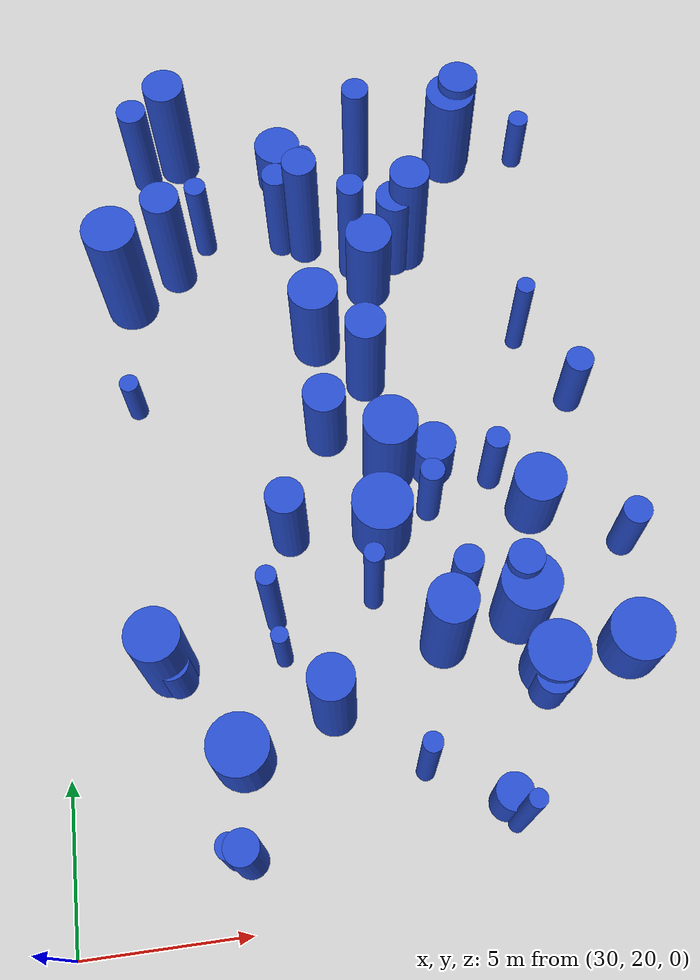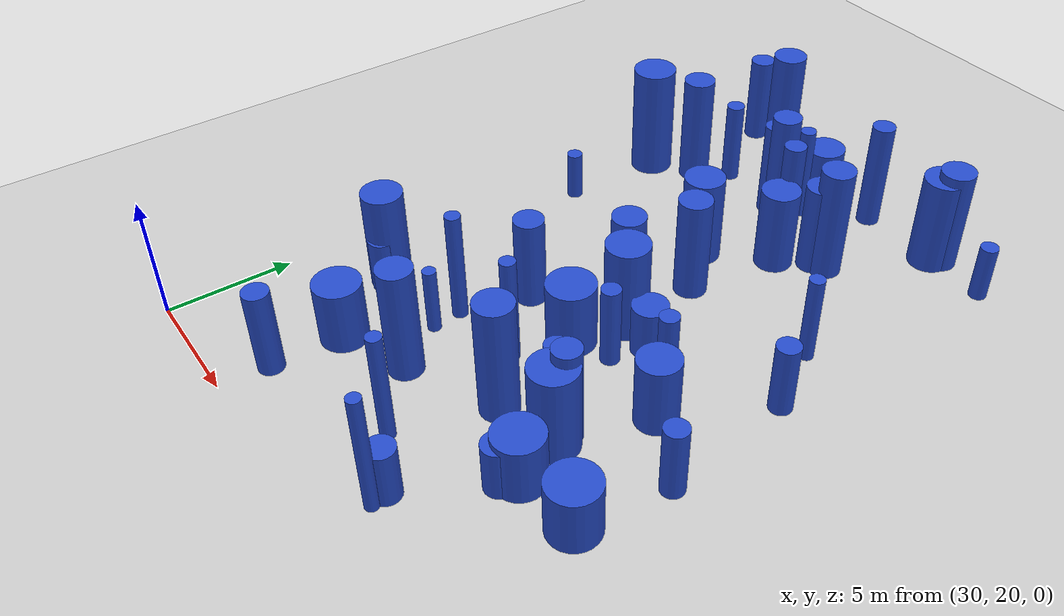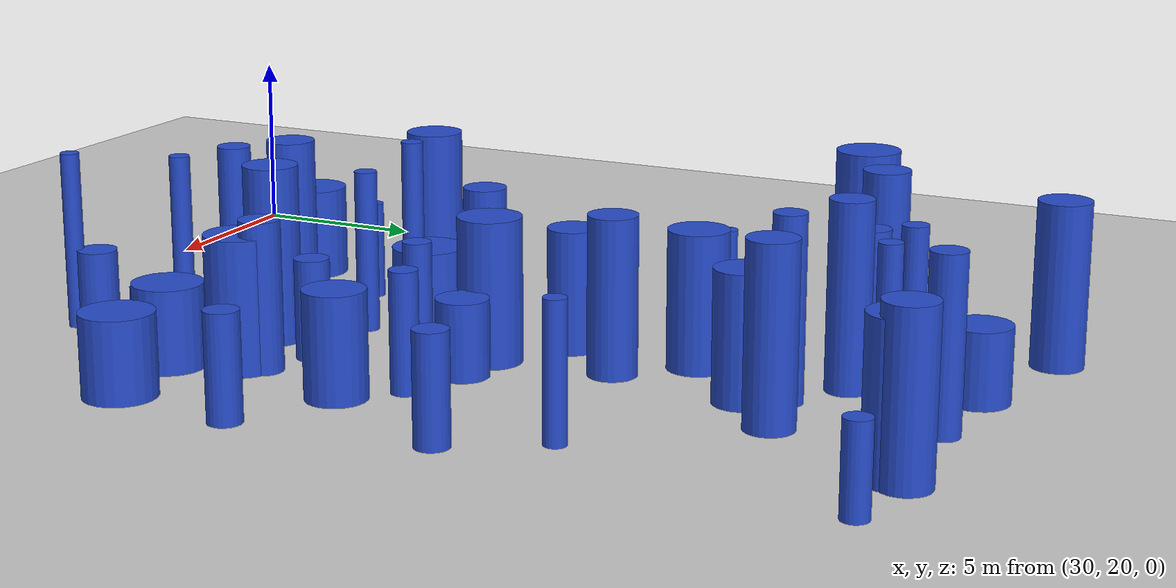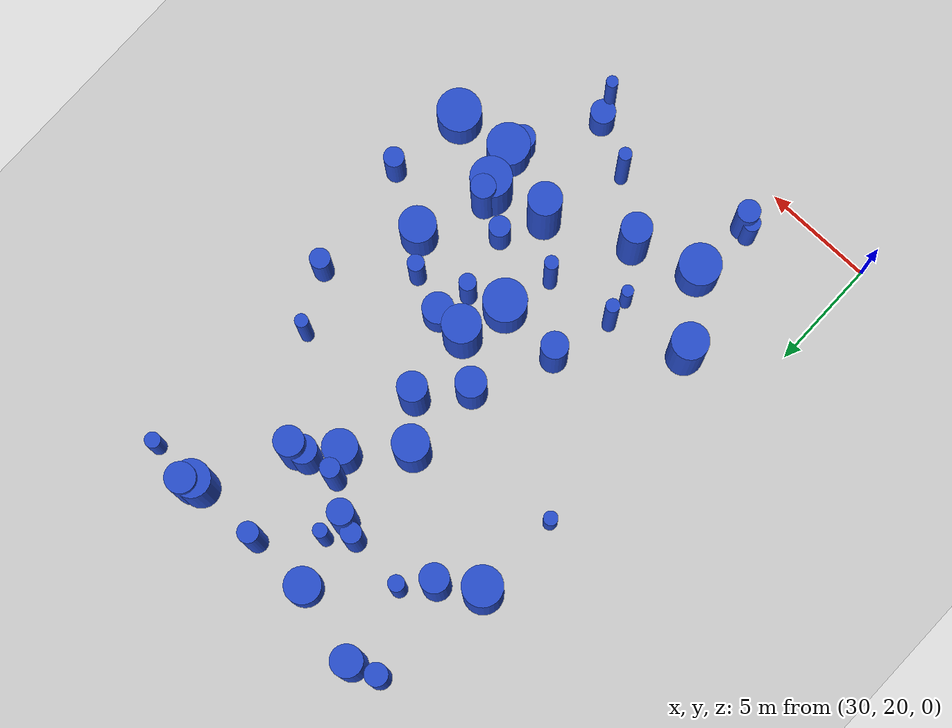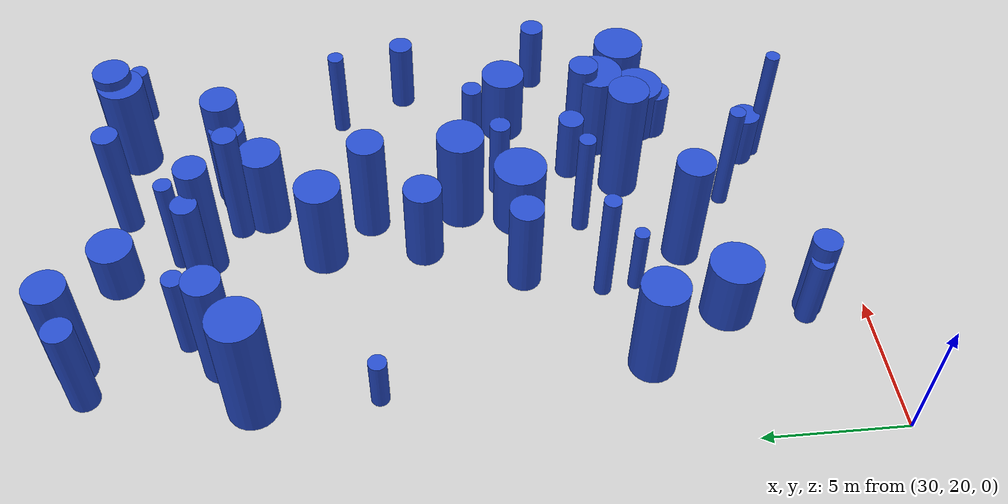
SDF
<sdf version="1.6">
 <world name="default">
  <model name="ground_plane">
   <static>1</static>
   <link name="link">
    <collision name="collision">
     <geometry><plane><normal>0 0 1</normal><size>100 100</size></plane></geometry>
     <surface><friction><ode><mu>100</mu><mu2>50</mu2></ode></friction></surface>
    </collision>
    <visual name="visual">
     <cast_shadows>0</cast_shadows>
     <geometry><plane><normal>0 0 1</normal><size>100 100</size></plane></geometry>
     <material>
      <script><uri>file://media/materials/scripts/gazebo.material</uri><name>Gazebo/Grey</name></script>
     </material>
    </visual>
   </link>
  </model>
  <model name="1">
   <static>0</static>
   <link name="link">
    <inertial>
     <mass>2</mass>
     <inertia><ixx>4.03627</ixx><ixy>0</ixy><ixz>0</ixz><iyy>4.03627</iyy><iyz>0</iyz><izz>0.190273</izz></inertia>
    </inertial>
    <collision name="collision">
     <geometry><cylinder><length>4.86279</length><radius>0.436203</radius></cylinder></geometry>
     <surface><contact><collide_without_contact>1</collide_without_contact></contact></surface>
    </collision>
    <visual name="visual">
     <geometry><cylinder><length>4.86279</length><radius>0.436203</radius></cylinder></geometry>
     <material>
      <script><uri>file://media/materials/scripts/gazebo.material</uri><name>Gazebo/Blue</name></script>
     </material>
    </visual>
    <gravity>0</gravity>
   </link>
   <pose>40.5806 41.9272 2.4314 0 -0 0</pose>
  </model>
  <model name="5">
   <static>0</static>
   <link name="link">
    <inertial>
     <mass>2</mass>
     <inertia><ixx>2.58297</ixx><ixy>0</ixy><ixz>0</ixz><iyy>2.58297</iyy><iyz>0</iyz><izz>0.837419</izz></inertia>
    </inertial>
    <collision name="collision">
     <geometry><cylinder><length>3.60355</length><radius>0.915106</radius></cylinder></geometry>
     <surface><contact><collide_without_contact>1</collide_without_contact></contact></surface>
    </collision>
    <visual name="visual">
     <geometry><cylinder><length>3.60355</length><radius>0.915106</radius></cylinder></geometry>
     <material>
      <script><uri>file://media/materials/scripts/gazebo.material</uri><name>Gazebo/Blue</name></script>
     </material>
    </visual>
    <gravity>0</gravity>
   </link>
   <pose>44.1312 28.2563 1.80178 0 -0 0</pose>
  </model>
  <model name="6">
   <static>0</static>
   <link name="link">
    <inertial>
     <mass>2</mass>
     <inertia><ixx>1.45049</ixx><ixy>0</ixy><ixz>0</ixz><iyy>1.45049</iyy><iyz>0</iyz><izz>0.206698</izz></inertia>
    </inertial>
    <collision name="collision">
     <geometry><cylinder><length>2.84303</length><radius>0.454641</radius></cylinder></geometry>
     <surface><contact><collide_without_contact>1</collide_without_contact></contact></surface>
    </collision>
    <visual name="visual">
     <geometry><cylinder><length>2.84303</length><radius>0.454641</radius></cylinder></geometry>
     <material>
      <script><uri>file://media/materials/scripts/gazebo.material</uri><name>Gazebo/Blue</name></script>
     </material>
    </visual>
    <gravity>0</gravity>
   </link>
   <pose>47.896 30.2729 1.42152 0 -0 0</pose>
  </model>
  <model name="8">
   <static>0</static>
   <link name="link">
    <inertial>
     <mass>2</mass>
     <inertia><ixx>3.23535</ixx><ixy>0</ixy><ixz>0</ixz><iyy>3.23535</iyy><iyz>0</iyz><izz>0.666389</izz></inertia>
    </inertial>
    <collision name="collision">
     <geometry><cylinder><length>4.17288</length><radius>0.816326</radius></cylinder></geometry>
     <surface><contact><collide_without_contact>1</collide_without_contact></contact></surface>
    </collision>
    <visual name="visual">
     <geometry><cylinder><length>4.17288</length><radius>0.816326</radius></cylinder></geometry>
     <material>
      <script><uri>file://media/materials/scripts/gazebo.material</uri><name>Gazebo/Blue</name></script>
     </material>
    </visual>
    <gravity>0</gravity>
   </link>
   <pose>33.2137 27.9199 2.08644 0 -0 0</pose>
  </model>
  <model name="9">
   <static>0</static>
   <link name="link">
    <inertial>
     <mass>2</mass>
     <inertia>
      <ixx>0.837934</ixx>
      <ixy>0</ixy>
      <ixz>0</ixz>
      <iyy>0.837934</iyy>
      <iyz>0</iyz>
      <izz>0.32901</izz>
     </inertia>
    </inertial>
    <collision name="collision">
     <geometry><cylinder><length>2.01012</length><radius>0.573593</radius></cylinder></geometry>
     <surface><contact><collide_without_contact>1</collide_without_contact></contact></surface>
    </collision>
    <visual name="visual">
     <geometry><cylinder><length>2.01012</length><radius>0.573593</radius></cylinder></geometry>
     <material>
      <script><uri>file://media/materials/scripts/gazebo.material</uri><name>Gazebo/Blue</name></script>
     </material>
    </visual>
    <gravity>0</gravity>
   </link>
   <pose>44.5713 25.7943 1.00506 0 -0 0</pose>
  </model>
  <model name="24">
   <static>0</static>
   <link name="link">
    <inertial>
     <mass>2</mass>
     <inertia><ixx>1.33949</ixx><ixy>0</ixy><ixz>0</ixz><iyy>1.33949</iyy><iyz>0</iyz><izz>0.222603</izz></inertia>
    </inertial>
    <collision name="collision">
     <geometry><cylinder><length>2.71462</length><radius>0.471809</radius></cylinder></geometry>
     <surface><contact><collide_without_contact>1</collide_without_contact></contact></surface>
    </collision>
    <visual name="visual">
     <geometry><cylinder><length>2.71462</length><radius>0.471809</radius></cylinder></geometry>
     <material>
      <script><uri>file://media/materials/scripts/gazebo.material</uri><name>Gazebo/Blue</name></script>
     </material>
    </visual>
    <gravity>0</gravity>
   </link>
   <pose>42.5584 29.4439 1.35731 0 -0 0</pose>
  </model>
  <model name="31">
   <static>0</static>
   <link name="link">
    <inertial>
     <mass>2</mass>
     <inertia><ixx>2.85237</ixx><ixy>0</ixy><ixz>0</ixz><iyy>2.85237</iyy><iyz>0</iyz><izz>0.298801</izz></inertia>
    </inertial>
    <collision name="collision">
     <geometry><cylinder><length>4.02714</length><radius>0.546627</radius></cylinder></geometry>
     <surface><contact><collide_without_contact>1</collide_without_contact></contact></surface>
    </collision>
    <visual name="visual">
     <geometry><cylinder><length>4.02714</length><radius>0.546627</radius></cylinder></geometry>
     <material>
      <script><uri>file://media/materials/scripts/gazebo.material</uri><name>Gazebo/Blue</name></script>
     </material>
    </visual>
    <gravity>0</gravity>
   </link>
   <pose>44.0403 28.8417 2.01357 0 -0 0</pose>
  </model>
  <model name="35">
   <static>0</static>
   <link name="link">
    <inertial>
     <mass>2</mass>
     <inertia><ixx>4.21675</ixx><ixy>0</ixy><ixz>0</ixz><iyy>4.21675</iyy><iyz>0</iyz><izz>0.78183</izz></inertia>
    </inertial>
    <collision name="collision">
     <geometry><cylinder><length>4.79114</length><radius>0.884211</radius></cylinder></geometry>
     <surface><contact><collide_without_contact>1</collide_without_contact></contact></surface>
    </collision>
    <visual name="visual">
     <geometry><cylinder><length>4.79114</length><radius>0.884211</radius></cylinder></geometry>
     <material>
      <script><uri>file://media/materials/scripts/gazebo.material</uri><name>Gazebo/Blue</name></script>
     </material>
    </visual>
    <gravity>0</gravity>
   </link>
   <pose>32.6922 41.2787 2.39557 0 -0 0</pose>
  </model>
  <model name="36">
   <static>0</static>
   <link name="link">
    <inertial>
     <mass>2</mass>
     <inertia><ixx>2.9244</ixx><ixy>0</ixy><ixz>0</ixz><iyy>2.9244</iyy><iyz>0</iyz><izz>0.736061</izz></inertia>
    </inertial>
    <collision name="collision">
     <geometry><cylinder><length>3.9164</length><radius>0.85794</radius></cylinder></geometry>
     <surface><contact><collide_without_contact>1</collide_without_contact></contact></surface>
    </collision>
    <visual name="visual">
     <geometry><cylinder><length>3.9164</length><radius>0.85794</radius></cylinder></geometry>
     <material>
      <script><uri>file://media/materials/scripts/gazebo.material</uri><name>Gazebo/Blue</name></script>
     </material>
    </visual>
    <gravity>0</gravity>
   </link>
   <pose>40.7714 33.7648 1.9582 0 -0 0</pose>
  </model>
  <model name="41">
   <static>0</static>
   <link name="link">
    <inertial>
     <mass>2</mass>
     <inertia><ixx>1.78705</ixx><ixy>0</ixy><ixz>0</ixz><iyy>1.78705</iyy><iyz>0</iyz><izz>0.141727</izz></inertia>
    </inertial>
    <collision name="collision">
     <geometry><cylinder><length>3.20891</length><radius>0.376467</radius></cylinder></geometry>
     <surface><contact><collide_without_contact>1</collide_without_contact></contact></surface>
    </collision>
    <visual name="visual">
     <geometry><cylinder><length>3.20891</length><radius>0.376467</radius></cylinder></geometry>
     <material>
      <script><uri>file://media/materials/scripts/gazebo.material</uri><name>Gazebo/Blue</name></script>
     </material>
    </visual>
    <gravity>0</gravity>
   </link>
   <pose>44.0414 33.0618 1.60446 0 -0 0</pose>
  </model>
  <model name="42">
   <static>0</static>
   <link name="link">
    <inertial>
     <mass>2</mass>
     <inertia>
      <ixx>3.99996</ixx>
      <ixy>0</ixy>
      <ixz>0</ixz>
      <iyy>3.99996</iyy>
      <iyz>0</iyz>
      <izz>0.0681669</izz>
     </inertia>
    </inertial>
    <collision name="collision">
     <geometry><cylinder><length>4.87804</length><radius>0.261088</radius></cylinder></geometry>
     <surface><contact><collide_without_contact>1</collide_without_contact></contact></surface>
    </collision>
    <visual name="visual">
     <geometry><cylinder><length>4.87804</length><radius>0.261088</radius></cylinder></geometry>
     <material>
      <script><uri>file://media/materials/scripts/gazebo.material</uri><name>Gazebo/Blue</name></script>
     </material>
    </visual>
    <gravity>0</gravity>
   </link>
   <pose>42.9274 22.0379 2.43902 0 -0 0</pose>
  </model>
  <model name="48">
   <static>0</static>
   <link name="link">
    <inertial>
     <mass>2</mass>
     <inertia><ixx>1.49969</ixx><ixy>0</ixy><ixz>0</ixz><iyy>1.49969</iyy><iyz>0</iyz><izz>0.145403</izz></inertia>
    </inertial>
    <collision name="collision">
     <geometry><cylinder><length>2.92608</length><radius>0.381317</radius></cylinder></geometry>
     <surface><contact><collide_without_contact>1</collide_without_contact></contact></surface>
    </collision>
    <visual name="visual">
     <geometry><cylinder><length>2.92608</length><radius>0.381317</radius></cylinder></geometry>
     <material>
      <script><uri>file://media/materials/scripts/gazebo.material</uri><name>Gazebo/Blue</name></script>
     </material>
    </visual>
    <gravity>0</gravity>
   </link>
   <pose>34.7366 22.1716 1.46304 0 -0 0</pose>
  </model>
  <model name="57">
   <static>0</static>
   <link name="link">
    <inertial>
     <mass>2</mass>
     <inertia><ixx>2.77459</ixx><ixy>0</ixy><ixz>0</ixz><iyy>2.77459</iyy><iyz>0</iyz><izz>0.103834</izz></inertia>
    </inertial>
    <collision name="collision">
     <geometry><cylinder><length>4.04179</length><radius>0.322234</radius></cylinder></geometry>
     <surface><contact><collide_without_contact>1</collide_without_contact></contact></surface>
    </collision>
    <visual name="visual">
     <geometry><cylinder><length>4.04179</length><radius>0.322234</radius></cylinder></geometry>
     <material>
      <script><uri>file://media/materials/scripts/gazebo.material</uri><name>Gazebo/Blue</name></script>
     </material>
    </visual>
    <gravity>0</gravity>
   </link>
   <pose>39.2208 44.0549 2.02089 0 -0 0</pose>
  </model>
  <model name="59">
   <static>0</static>
   <link name="link">
    <inertial>
     <mass>2</mass>
     <inertia><ixx>3.58918</ixx><ixy>0</ixy><ixz>0</ixz><iyy>3.58918</iyy><iyz>0</iyz><izz>0.215934</izz></inertia>
    </inertial>
    <collision name="collision">
     <geometry><cylinder><length>4.57026</length><radius>0.464687</radius></cylinder></geometry>
     <surface><contact><collide_without_contact>1</collide_without_contact></contact></surface>
    </collision>
    <visual name="visual">
     <geometry><cylinder><length>4.57026</length><radius>0.464687</radius></cylinder></geometry>
     <material>
      <script><uri>file://media/materials/scripts/gazebo.material</uri><name>Gazebo/Blue</name></script>
     </material>
    </visual>
    <gravity>0</gravity>
   </link>
   <pose>41.2828 46.1145 2.28513 0 -0 0</pose>
  </model>
  <model name="61">
   <static>0</static>
   <link name="link">
    <inertial>
     <mass>2</mass>
     <inertia>
      <ixx>0.755586</ixx>
      <ixy>0</ixy>
      <ixz>0</ixz>
      <iyy>0.755586</iyy>
      <iyz>0</iyz>
      <izz>0.100977</izz>
     </inertia>
    </inertial>
    <collision name="collision">
     <geometry><cylinder><length>2.05684</length><radius>0.317769</radius></cylinder></geometry>
     <surface><contact><collide_without_contact>1</collide_without_contact></contact></surface>
    </collision>
    <visual name="visual">
     <geometry><cylinder><length>2.05684</length><radius>0.317769</radius></cylinder></geometry>
     <material>
      <script><uri>file://media/materials/scripts/gazebo.material</uri><name>Gazebo/Blue</name></script>
     </material>
    </visual>
    <gravity>0</gravity>
   </link>
   <pose>32.6546 37.1213 1.02842 0 -0 0</pose>
  </model>
  <model name="69">
   <static>0</static>
   <link name="link">
    <inertial>
     <mass>2</mass>
     <inertia><ixx>2.64147</ixx><ixy>0</ixy><ixz>0</ixz><iyy>2.64147</iyy><iyz>0</iyz><izz>0.663706</izz></inertia>
    </inertial>
    <collision name="collision">
     <geometry><cylinder><length>3.72259</length><radius>0.814681</radius></cylinder></geometry>
     <surface><contact><collide_without_contact>1</collide_without_contact></contact></surface>
    </collision>
    <visual name="visual">
     <geometry><cylinder><length>3.72259</length><radius>0.814681</radius></cylinder></geometry>
     <material>
      <script><uri>file://media/materials/scripts/gazebo.material</uri><name>Gazebo/Blue</name></script>
     </material>
    </visual>
    <gravity>0</gravity>
   </link>
   <pose>38.9608 38.8646 1.8613 0 -0 0</pose>
  </model>
  <model name="72">
   <static>0</static>
   <link name="link">
    <inertial>
     <mass>2</mass>
     <inertia><ixx>3.4078</ixx><ixy>0</ixy><ixz>0</ixz><iyy>3.4078</iyy><iyz>0</iyz><izz>0.0847471</izz></inertia>
    </inertial>
    <collision name="collision">
     <geometry><cylinder><length>4.49361</length><radius>0.291114</radius></cylinder></geometry>
     <surface><contact><collide_without_contact>1</collide_without_contact></contact></surface>
    </collision>
    <visual name="visual">
     <geometry><cylinder><length>4.49361</length><radius>0.291114</radius></cylinder></geometry>
     <material>
      <script><uri>file://media/materials/scripts/gazebo.material</uri><name>Gazebo/Blue</name></script>
     </material>
    </visual>
    <gravity>0</gravity>
   </link>
   <pose>40.4975 23.8881 2.24681 0 -0 0</pose>
  </model>
  <model name="83">
   <static>0</static>
   <link name="link">
    <inertial>
     <mass>2</mass>
     <inertia>
      <ixx>0.968813</ixx>
      <ixy>0</ixy>
      <ixz>0</ixz>
      <iyy>0.968813</iyy>
      <iyz>0</iyz>
      <izz>0.493348</izz>
     </inertia>
    </inertial>
    <collision name="collision">
     <geometry><cylinder><length>2.08155</length><radius>0.702387</radius></cylinder></geometry>
     <surface><contact><collide_without_contact>1</collide_without_contact></contact></surface>
    </collision>
    <visual name="visual">
     <geometry><cylinder><length>2.08155</length><radius>0.702387</radius></cylinder></geometry>
     <material>
      <script><uri>file://media/materials/scripts/gazebo.material</uri><name>Gazebo/Blue</name></script>
     </material>
    </visual>
    <gravity>0</gravity>
   </link>
   <pose>42.2079 33.7163 1.04077 0 -0 0</pose>
  </model>
  <model name="85">
   <static>0</static>
   <link name="link">
    <inertial>
     <mass>2</mass>
     <inertia><ixx>2.60026</ixx><ixy>0</ixy><ixz>0</ixz><iyy>2.60026</iyy><iyz>0</iyz><izz>0.409389</izz></inertia>
    </inertial>
    <collision name="collision">
     <geometry><cylinder><length>3.79122</length><radius>0.639835</radius></cylinder></geometry>
     <surface><contact><collide_without_contact>1</collide_without_contact></contact></surface>
    </collision>
    <visual name="visual">
     <geometry><cylinder><length>3.79122</length><radius>0.639835</radius></cylinder></geometry>
     <material>
      <script><uri>file://media/materials/scripts/gazebo.material</uri><name>Gazebo/Blue</name></script>
     </material>
    </visual>
    <gravity>0</gravity>
   </link>
   <pose>42.1021 42.0806 1.89561 0 -0 0</pose>
  </model>
  <model name="89">
   <static>0</static>
   <link name="link">
    <inertial>
     <mass>2</mass>
     <inertia><ixx>3.96384</ixx><ixy>0</ixy><ixz>0</ixz><iyy>3.96384</iyy><iyz>0</iyz><izz>0.43913</izz></inertia>
    </inertial>
    <collision name="collision">
     <geometry><cylinder><length>4.73979</length><radius>0.662669</radius></cylinder></geometry>
     <surface><contact><collide_without_contact>1</collide_without_contact></contact></surface>
    </collision>
    <visual name="visual">
     <geometry><cylinder><length>4.73979</length><radius>0.662669</radius></cylinder></geometry>
     <material>
      <script><uri>file://media/materials/scripts/gazebo.material</uri><name>Gazebo/Blue</name></script>
     </material>
    </visual>
    <gravity>0</gravity>
   </link>
   <pose>42.6006 42.2495 2.3699 0 -0 0</pose>
  </model>
  <model name="92">
   <static>0</static>
   <link name="link">
    <inertial>
     <mass>2</mass>
     <inertia><ixx>1.00566</ixx><ixy>0</ixy><ixz>0</ixz><iyy>1.00566</iyy><iyz>0</iyz><izz>0.311472</izz></inertia>
    </inertial>
    <collision name="collision">
     <geometry><cylinder><length>2.25822</length><radius>0.558097</radius></cylinder></geometry>
     <surface><contact><collide_without_contact>1</collide_without_contact></contact></surface>
    </collision>
    <visual name="visual">
     <geometry><cylinder><length>2.25822</length><radius>0.558097</radius></cylinder></geometry>
     <material>
      <script><uri>file://media/materials/scripts/gazebo.material</uri><name>Gazebo/Blue</name></script>
     </material>
    </visual>
    <gravity>0</gravity>
   </link>
   <pose>33.4249 27.6001 1.12911 0 -0 0</pose>
  </model>
  <model name="96">
   <static>0</static>
   <link name="link">
    <inertial>
     <mass>2</mass>
     <inertia><ixx>4.18802</ixx><ixy>0</ixy><ixz>0</ixz><iyy>4.18802</iyy><iyz>0</iyz><izz>0.550125</izz></inertia>
    </inertial>
    <collision name="collision">
     <geometry><cylinder><length>4.84538</length><radius>0.741704</radius></cylinder></geometry>
     <surface><contact><collide_without_contact>1</collide_without_contact></contact></surface>
    </collision>
    <visual name="visual">
     <geometry><cylinder><length>4.84538</length><radius>0.741704</radius></cylinder></geometry>
     <material>
      <script><uri>file://media/materials/scripts/gazebo.material</uri><name>Gazebo/Blue</name></script>
     </material>
    </visual>
    <gravity>0</gravity>
   </link>
   <pose>41.6394 27.6337 2.42269 0 -0 0</pose>
  </model>
  <model name="104">
   <static>0</static>
   <link name="link">
    <inertial>
     <mass>2</mass>
     <inertia><ixx>2.2195</ixx><ixy>0</ixy><ixz>0</ixz><iyy>2.2195</iyy><iyz>0</iyz><izz>0.255192</izz></inertia>
    </inertial>
    <collision name="collision">
     <geometry><cylinder><length>3.5428</length><radius>0.505166</radius></cylinder></geometry>
     <surface><contact><collide_without_contact>1</collide_without_contact></contact></surface>
    </collision>
    <visual name="visual">
     <geometry><cylinder><length>3.5428</length><radius>0.505166</radius></cylinder></geometry>
     <material>
      <script><uri>file://media/materials/scripts/gazebo.material</uri><name>Gazebo/Blue</name></script>
     </material>
    </visual>
    <gravity>0</gravity>
   </link>
   <pose>35.1244 22.0143 1.7714 0 -0 0</pose>
  </model>
  <model name="107">
   <static>0</static>
   <link name="link">
    <inertial>
     <mass>2</mass>
     <inertia><ixx>2.51062</ixx><ixy>0</ixy><ixz>0</ixz><iyy>2.51062</iyy><iyz>0</iyz><izz>0.36402</izz></inertia>
    </inertial>
    <collision name="collision">
     <geometry><cylinder><length>3.73787</length><radius>0.603341</radius></cylinder></geometry>
     <surface><contact><collide_without_contact>1</collide_without_contact></contact></surface>
    </collision>
    <visual name="visual">
     <geometry><cylinder><length>3.73787</length><radius>0.603341</radius></cylinder></geometry>
     <material>
      <script><uri>file://media/materials/scripts/gazebo.material</uri><name>Gazebo/Blue</name></script>
     </material>
    </visual>
    <gravity>0</gravity>
   </link>
   <pose>37.3003 31.7893 1.86893 0 -0 0</pose>
  </model>
  <model name="120">
   <static>0</static>
   <link name="link">
    <inertial>
     <mass>2</mass>
     <inertia><ixx>2.98502</ixx><ixy>0</ixy><ixz>0</ixz><iyy>2.98502</iyy><iyz>0</iyz><izz>0.697488</izz></inertia>
    </inertial>
    <collision name="collision">
     <geometry><cylinder><length>3.97714</length><radius>0.835157</radius></cylinder></geometry>
     <surface><contact><collide_without_contact>1</collide_without_contact></contact></surface>
    </collision>
    <visual name="visual">
     <geometry><cylinder><length>3.97714</length><radius>0.835157</radius></cylinder></geometry>
     <material>
      <script><uri>file://media/materials/scripts/gazebo.material</uri><name>Gazebo/Blue</name></script>
     </material>
    </visual>
    <gravity>0</gravity>
   </link>
   <pose>44.6255 46.0701 1.98857 0 -0 0</pose>
  </model>
  <model name="137">
   <static>0</static>
   <link name="link">
    <inertial>
     <mass>2</mass>
     <inertia><ixx>2.55399</ixx><ixy>0</ixy><ixz>0</ixz><iyy>2.55399</iyy><iyz>0</iyz><izz>0.260418</izz></inertia>
    </inertial>
    <collision name="collision">
     <geometry><cylinder><length>3.81349</length><radius>0.510311</radius></cylinder></geometry>
     <surface><contact><collide_without_contact>1</collide_without_contact></contact></surface>
    </collision>
    <visual name="visual">
     <geometry><cylinder><length>3.81349</length><radius>0.510311</radius></cylinder></geometry>
     <material>
      <script><uri>file://media/materials/scripts/gazebo.material</uri><name>Gazebo/Blue</name></script>
     </material>
    </visual>
    <gravity>0</gravity>
   </link>
   <pose>33.5214 46.825 1.90674 0 -0 0</pose>
  </model>
  <model name="141">
   <static>0</static>
   <link name="link">
    <inertial>
     <mass>2</mass>
     <inertia><ixx>2.30961</ixx><ixy>0</ixy><ixz>0</ixz><iyy>2.30961</iyy><iyz>0</iyz><izz>0.6002</izz></inertia>
    </inertial>
    <collision name="collision">
     <geometry><cylinder><length>3.47233</length><radius>0.774725</radius></cylinder></geometry>
     <surface><contact><collide_without_contact>1</collide_without_contact></contact></surface>
    </collision>
    <visual name="visual">
     <geometry><cylinder><length>3.47233</length><radius>0.774725</radius></cylinder></geometry>
     <material>
      <script><uri>file://media/materials/scripts/gazebo.material</uri><name>Gazebo/Blue</name></script>
     </material>
    </visual>
    <gravity>0</gravity>
   </link>
   <pose>41.0566 40.9389 1.73616 0 -0 0</pose>
  </model>
  <model name="143">
   <static>0</static>
   <link name="link">
    <inertial>
     <mass>2</mass>
     <inertia><ixx>2.1021</ixx><ixy>0</ixy><ixz>0</ixz><iyy>2.1021</iyy><iyz>0</iyz><izz>0.471782</izz></inertia>
    </inertial>
    <collision name="collision">
     <geometry><cylinder><length>3.34623</length><radius>0.686864</radius></cylinder></geometry>
     <surface><contact><collide_without_contact>1</collide_without_contact></contact></surface>
    </collision>
    <visual name="visual">
     <geometry><cylinder><length>3.34623</length><radius>0.686864</radius></cylinder></geometry>
     <material>
      <script><uri>file://media/materials/scripts/gazebo.material</uri><name>Gazebo/Blue</name></script>
     </material>
    </visual>
    <gravity>0</gravity>
   </link>
   <pose>38.8841 35.253 1.67312 0 -0 0</pose>
  </model>
  <model name="149">
   <static>0</static>
   <link name="link">
    <inertial>
     <mass>2</mass>
     <inertia>
      <ixx>3.60129</ixx>
      <ixy>0</ixy>
      <ixz>0</ixz>
      <iyy>3.60129</iyy>
      <iyz>0</iyz>
      <izz>0.0940447</izz>
     </inertia>
    </inertial>
    <collision name="collision">
     <geometry><cylinder><length>4.61797</length><radius>0.306667</radius></cylinder></geometry>
     <surface><contact><collide_without_contact>1</collide_without_contact></contact></surface>
    </collision>
    <visual name="visual">
     <geometry><cylinder><length>4.61797</length><radius>0.306667</radius></cylinder></geometry>
     <material>
      <script><uri>file://media/materials/scripts/gazebo.material</uri><name>Gazebo/Blue</name></script>
     </material>
    </visual>
    <gravity>0</gravity>
   </link>
   <pose>36.5534 29.0598 2.30898 0 -0 0</pose>
  </model>
  <model name="154">
   <static>0</static>
   <link name="link">
    <inertial>
     <mass>2</mass>
     <inertia><ixx>2.21844</ixx><ixy>0</ixy><ixz>0</ixz><iyy>2.21844</iyy><iyz>0</iyz><izz>0.090353</izz></inertia>
    </inertial>
    <collision name="collision">
     <geometry><cylinder><length>3.61104</length><radius>0.300588</radius></cylinder></geometry>
     <surface><contact><collide_without_contact>1</collide_without_contact></contact></surface>
    </collision>
    <visual name="visual">
     <geometry><cylinder><length>3.61104</length><radius>0.300588</radius></cylinder></geometry>
     <material>
      <script><uri>file://media/materials/scripts/gazebo.material</uri><name>Gazebo/Blue</name></script>
     </material>
    </visual>
    <gravity>0</gravity>
   </link>
   <pose>45.8422 38.1421 1.80552 0 -0 0</pose>
  </model>
  <model name="156">
   <static>0</static>
   <link name="link">
    <inertial>
     <mass>2</mass>
     <inertia>
      <ixx>0.966781</ixx>
      <ixy>0</ixy>
      <ixz>0</ixz>
      <iyy>0.966781</iyy>
      <iyz>0</iyz>
      <izz>0.122918</izz>
     </inertia>
    </inertial>
    <collision name="collision">
     <geometry><cylinder><length>2.33065</length><radius>0.350596</radius></cylinder></geometry>
     <surface><contact><collide_without_contact>1</collide_without_contact></contact></surface>
    </collision>
    <visual name="visual">
     <geometry><cylinder><length>2.33065</length><radius>0.350596</radius></cylinder></geometry>
     <material>
      <script><uri>file://media/materials/scripts/gazebo.material</uri><name>Gazebo/Blue</name></script>
     </material>
    </visual>
    <gravity>0</gravity>
   </link>
   <pose>47.2122 45.9744 1.16533 0 -0 0</pose>
  </model>
  <model name="174">
   <static>0</static>
   <link name="link">
    <inertial>
     <mass>2</mass>
     <inertia><ixx>2.17857</ixx><ixy>0</ixy><ixz>0</ixz><iyy>2.17857</iyy><iyz>0</iyz><izz>0.134831</izz></inertia>
    </inertial>
    <collision name="collision">
     <geometry><cylinder><length>3.55906</length><radius>0.367193</radius></cylinder></geometry>
     <surface><contact><collide_without_contact>1</collide_without_contact></contact></surface>
    </collision>
    <visual name="visual">
     <geometry><cylinder><length>3.55906</length><radius>0.367193</radius></cylinder></geometry>
     <material>
      <script><uri>file://media/materials/scripts/gazebo.material</uri><name>Gazebo/Blue</name></script>
     </material>
    </visual>
    <gravity>0</gravity>
   </link>
   <pose>35.4652 43.5282 1.77953 0 -0 0</pose>
  </model>
  <model name="177">
   <static>0</static>
   <link name="link">
    <inertial>
     <mass>2</mass>
     <inertia><ixx>3.86454</ixx><ixy>0</ixy><ixz>0</ixz><iyy>3.86454</iyy><iyz>0</iyz><izz>0.413248</izz></inertia>
    </inertial>
    <collision name="collision">
     <geometry><cylinder><length>4.68482</length><radius>0.642844</radius></cylinder></geometry>
     <surface><contact><collide_without_contact>1</collide_without_contact></contact></surface>
    </collision>
    <visual name="visual">
     <geometry><cylinder><length>4.68482</length><radius>0.642844</radius></cylinder></geometry>
     <material>
      <script><uri>file://media/materials/scripts/gazebo.material</uri><name>Gazebo/Blue</name></script>
     </material>
    </visual>
    <gravity>0</gravity>
   </link>
   <pose>34.3715 42.3598 2.34241 0 -0 0</pose>
  </model>
  <model name="178">
   <static>0</static>
   <link name="link">
    <inertial>
     <mass>2</mass>
     <inertia><ixx>2.85881</ixx><ixy>0</ixy><ixz>0</ixz><iyy>2.85881</iyy><iyz>0</iyz><izz>0.214801</izz></inertia>
    </inertial>
    <collision name="collision">
     <geometry><cylinder><length>4.06306</length><radius>0.463466</radius></cylinder></geometry>
     <surface><contact><collide_without_contact>1</collide_without_contact></contact></surface>
    </collision>
    <visual name="visual">
     <geometry><cylinder><length>4.06306</length><radius>0.463466</radius></cylinder></geometry>
     <material>
      <script><uri>file://media/materials/scripts/gazebo.material</uri><name>Gazebo/Blue</name></script>
     </material>
    </visual>
    <gravity>0</gravity>
   </link>
   <pose>38.2129 43.2725 2.03153 0 -0 0</pose>
  </model>
  <model name="181">
   <static>0</static>
   <link name="link">
    <inertial>
     <mass>2</mass>
     <inertia><ixx>1.56642</ixx><ixy>0</ixy><ixz>0</ixz><iyy>1.56642</iyy><iyz>0</iyz><izz>0.869834</izz></inertia>
    </inertial>
    <collision name="collision">
     <geometry><cylinder><length>2.60557</length><radius>0.932649</radius></cylinder></geometry>
     <surface><contact><collide_without_contact>1</collide_without_contact></contact></surface>
    </collision>
    <visual name="visual">
     <geometry><cylinder><length>2.60557</length><radius>0.932649</radius></cylinder></geometry>
     <material>
      <script><uri>file://media/materials/scripts/gazebo.material</uri><name>Gazebo/Blue</name></script>
     </material>
    </visual>
    <gravity>0</gravity>
   </link>
   <pose>35.1911 24.9028 1.30279 0 -0 0</pose>
  </model>
  <model name="182">
   <static>0</static>
   <link name="link">
    <inertial>
     <mass>2</mass>
     <inertia>
      <ixx>0.957731</ixx>
      <ixy>0</ixy>
      <ixz>0</ixz>
      <iyy>0.957731</iyy>
      <iyz>0</iyz>
      <izz>0.303056</izz>
     </inertia>
    </inertial>
    <collision name="collision">
     <geometry><cylinder><length>2.19937</length><radius>0.550506</radius></cylinder></geometry>
     <surface><contact><collide_without_contact>1</collide_without_contact></contact></surface>
    </collision>
    <visual name="visual">
     <geometry><cylinder><length>2.19937</length><radius>0.550506</radius></cylinder></geometry>
     <material>
      <script><uri>file://media/materials/scripts/gazebo.material</uri><name>Gazebo/Blue</name></script>
     </material>
    </visual>
    <gravity>0</gravity>
   </link>
   <pose>42.746 22.6564 1.09968 0 -0 0</pose>
  </model>
  <model name="184">
   <static>0</static>
   <link name="link">
    <inertial>
     <mass>2</mass>
     <inertia><ixx>3.55233</ixx><ixy>0</ixy><ixz>0</ixz><iyy>3.55233</iyy><iyz>0</iyz><izz>0.501542</izz></inertia>
    </inertial>
    <collision name="collision">
     <geometry><cylinder><length>4.45077</length><radius>0.708196</radius></cylinder></geometry>
     <surface><contact><collide_without_contact>1</collide_without_contact></contact></surface>
    </collision>
    <visual name="visual">
     <geometry><cylinder><length>4.45077</length><radius>0.708196</radius></cylinder></geometry>
     <material>
      <script><uri>file://media/materials/scripts/gazebo.material</uri><name>Gazebo/Blue</name></script>
     </material>
    </visual>
    <gravity>0</gravity>
   </link>
   <pose>34.7456 47.2366 2.22538 0 -0 0</pose>
  </model>
  <model name="193">
   <static>0</static>
   <link name="link">
    <inertial>
     <mass>2</mass>
     <inertia><ixx>3.40262</ixx><ixy>0</ixy><ixz>0</ixz><iyy>3.40262</iyy><iyz>0</iyz><izz>0.460705</izz></inertia>
    </inertial>
    <collision name="collision">
     <geometry><cylinder><length>4.36275</length><radius>0.678752</radius></cylinder></geometry>
     <surface><contact><collide_without_contact>1</collide_without_contact></contact></surface>
    </collision>
    <visual name="visual">
     <geometry><cylinder><length>4.36275</length><radius>0.678752</radius></cylinder></geometry>
     <material>
      <script><uri>file://media/materials/scripts/gazebo.material</uri><name>Gazebo/Blue</name></script>
     </material>
    </visual>
    <gravity>0</gravity>
   </link>
   <pose>44.9178 46.3504 2.18138 0 -0 0</pose>
  </model>
  <model name="194">
   <static>0</static>
   <link name="link">
    <inertial>
     <mass>2</mass>
     <inertia><ixx>3.84056</ixx><ixy>0</ixy><ixz>0</ixz><iyy>3.84056</iyy><iyz>0</iyz><izz>0.462859</izz></inertia>
    </inertial>
    <collision name="collision">
     <geometry><cylinder><length>4.65347</length><radius>0.680337</radius></cylinder></geometry>
     <surface><contact><collide_without_contact>1</collide_without_contact></contact></surface>
    </collision>
    <visual name="visual">
     <geometry><cylinder><length>4.65347</length><radius>0.680337</radius></cylinder></geometry>
     <material>
      <script><uri>file://media/materials/scripts/gazebo.material</uri><name>Gazebo/Blue</name></script>
     </material>
    </visual>
    <gravity>0</gravity>
   </link>
   <pose>38.0163 25.9434 2.32673 0 -0 0</pose>
  </model>
  <model name="199">
   <static>0</static>
   <link name="link">
    <inertial>
     <mass>2</mass>
     <inertia>
      <ixx>3.32704</ixx>
      <ixy>0</ixy>
      <ixz>0</ixz>
      <iyy>3.32704</iyy>
      <iyz>0</iyz>
      <izz>0.0950179</izz>
     </inertia>
    </inertial>
    <collision name="collision">
     <geometry><cylinder><length>4.4359</length><radius>0.30825</radius></cylinder></geometry>
     <surface><contact><collide_without_contact>1</collide_without_contact></contact></surface>
    </collision>
    <visual name="visual">
     <geometry><cylinder><length>4.4359</length><radius>0.30825</radius></cylinder></geometry>
     <material>
      <script><uri>file://media/materials/scripts/gazebo.material</uri><name>Gazebo/Blue</name></script>
     </material>
    </visual>
    <gravity>0</gravity>
   </link>
   <pose>39.6729 29.3954 2.21795 0 -0 0</pose>
  </model>
  <model name="200">
   <static>0</static>
   <link name="link">
    <inertial>
     <mass>2</mass>
     <inertia><ixx>1.00669</ixx><ixy>0</ixy><ixz>0</ixz><iyy>1.00669</iyy><iyz>0</iyz><izz>0.662145</izz></inertia>
    </inertial>
    <collision name="collision">
     <geometry><cylinder><length>2.01338</length><radius>0.813723</radius></cylinder></geometry>
     <surface><contact><collide_without_contact>1</collide_without_contact></contact></surface>
    </collision>
    <visual name="visual">
     <geometry><cylinder><length>2.01338</length><radius>0.813723</radius></cylinder></geometry>
     <material>
      <script><uri>file://media/materials/scripts/gazebo.material</uri><name>Gazebo/Blue</name></script>
     </material>
    </visual>
    <gravity>0</gravity>
   </link>
   <pose>38.434 46.1925 1.00669 0 -0 0</pose>
  </model>
  <model name="206">
   <static>0</static>
   <link name="link">
    <inertial>
     <mass>2</mass>
     <inertia><ixx>4.29694</ixx><ixy>0</ixy><ixz>0</ixz><iyy>4.29694</iyy><iyz>0</iyz><izz>0.331563</izz></inertia>
    </inertial>
    <collision name="collision">
     <geometry><cylinder><length>4.97865</length><radius>0.575815</radius></cylinder></geometry>
     <surface><contact><collide_without_contact>1</collide_without_contact></contact></surface>
    </collision>
    <visual name="visual">
     <geometry><cylinder><length>4.97865</length><radius>0.575815</radius></cylinder></geometry>
     <material>
      <script><uri>file://media/materials/scripts/gazebo.material</uri><name>Gazebo/Blue</name></script>
     </material>
    </visual>
    <gravity>0</gravity>
   </link>
   <pose>39.023 42.9674 2.48932 0 -0 0</pose>
  </model>
  <model name="210">
   <static>0</static>
   <link name="link">
    <inertial>
     <mass>2</mass>
     <inertia><ixx>1.67791</ixx><ixy>0</ixy><ixz>0</ixz><iyy>1.67791</iyy><iyz>0</iyz><izz>0.671933</izz></inertia>
    </inertial>
    <collision name="collision">
     <geometry><cylinder><length>2.83754</length><radius>0.819715</radius></cylinder></geometry>
     <surface><contact><collide_without_contact>1</collide_without_contact></contact></surface>
    </collision>
    <visual name="visual">
     <geometry><cylinder><length>2.83754</length><radius>0.819715</radius></cylinder></geometry>
     <material>
      <script><uri>file://media/materials/scripts/gazebo.material</uri><name>Gazebo/Blue</name></script>
     </material>
    </visual>
    <gravity>0</gravity>
   </link>
   <pose>45.1725 31.7449 1.41877 0 -0 0</pose>
  </model>
  <model name="216">
   <static>0</static>
   <link name="link">
    <inertial>
     <mass>2</mass>
     <inertia><ixx>1.2816</ixx><ixy>0</ixy><ixz>0</ixz><iyy>1.2816</iyy><iyz>0</iyz><izz>0.071283</izz></inertia>
    </inertial>
    <collision name="collision">
     <geometry><cylinder><length>2.73418</length><radius>0.266989</radius></cylinder></geometry>
     <surface><contact><collide_without_contact>1</collide_without_contact></contact></surface>
    </collision>
    <visual name="visual">
     <geometry><cylinder><length>2.73418</length><radius>0.266989</radius></cylinder></geometry>
     <material>
      <script><uri>file://media/materials/scripts/gazebo.material</uri><name>Gazebo/Blue</name></script>
     </material>
    </visual>
    <gravity>0</gravity>
   </link>
   <pose>36.6887 27.8581 1.36709 0 -0 0</pose>
  </model>
  <model name="221">
   <static>0</static>
   <link name="link">
    <inertial>
     <mass>2</mass>
     <inertia><ixx>1.49746</ixx><ixy>0</ixy><ixz>0</ixz><iyy>1.49746</iyy><iyz>0</iyz><izz>0.205726</izz></inertia>
    </inertial>
    <collision name="collision">
     <geometry><cylinder><length>2.89268</length><radius>0.45357</radius></cylinder></geometry>
     <surface><contact><collide_without_contact>1</collide_without_contact></contact></surface>
    </collision>
    <visual name="visual">
     <geometry><cylinder><length>2.89268</length><radius>0.45357</radius></cylinder></geometry>
     <material>
      <script><uri>file://media/materials/scripts/gazebo.material</uri><name>Gazebo/Blue</name></script>
     </material>
    </visual>
    <gravity>0</gravity>
   </link>
   <pose>47.2174 35.6117 1.44634 0 -0 0</pose>
  </model>
  <model name="230">
   <static>0</static>
   <link name="link">
    <inertial>
     <mass>2</mass>
     <inertia><ixx>1.90714</ixx><ixy>0</ixy><ixz>0</ixz><iyy>1.90714</iyy><iyz>0</iyz><izz>0.144915</izz></inertia>
    </inertial>
    <collision name="collision">
     <geometry><cylinder><length>3.31784</length><radius>0.380678</radius></cylinder></geometry>
     <surface><contact><collide_without_contact>1</collide_without_contact></contact></surface>
    </collision>
    <visual name="visual">
     <geometry><cylinder><length>3.31784</length><radius>0.380678</radius></cylinder></geometry>
     <material>
      <script><uri>file://media/materials/scripts/gazebo.material</uri><name>Gazebo/Blue</name></script>
     </material>
    </visual>
    <gravity>0</gravity>
   </link>
   <pose>41.8607 32.2136 1.65892 0 -0 0</pose>
  </model>
  <model name="231">
   <static>0</static>
   <link name="link">
    <inertial>
     <mass>2</mass>
     <inertia><ixx>1.2889</ixx><ixy>0</ixy><ixz>0</ixz><iyy>1.2889</iyy><iyz>0</iyz><izz>0.955074</izz></inertia>
    </inertial>
    <collision name="collision">
     <geometry><cylinder><length>2.20639</length><radius>0.977279</radius></cylinder></geometry>
     <surface><contact><collide_without_contact>1</collide_without_contact></contact></surface>
    </collision>
    <visual name="visual">
     <geometry><cylinder><length>2.20639</length><radius>0.977279</radius></cylinder></geometry>
     <material>
      <script><uri>file://media/materials/scripts/gazebo.material</uri><name>Gazebo/Blue</name></script>
     </material>
    </visual>
    <gravity>0</gravity>
   </link>
   <pose>47.3565 26.7718 1.1032 0 -0 0</pose>
  </model>
  <model name="239">
   <static>0</static>
   <link name="link">
    <inertial>
     <mass>2</mass>
     <inertia><ixx>1.29959</ixx><ixy>0</ixy><ixz>0</ixz><iyy>1.29959</iyy><iyz>0</iyz><izz>0.903055</izz></inertia>
    </inertial>
    <collision name="collision">
     <geometry><cylinder><length>2.25575</length><radius>0.950292</radius></cylinder></geometry>
     <surface><contact><collide_without_contact>1</collide_without_contact></contact></surface>
    </collision>
    <visual name="visual">
     <geometry><cylinder><length>2.25575</length><radius>0.950292</radius></cylinder></geometry>
     <material>
      <script><uri>file://media/materials/scripts/gazebo.material</uri><name>Gazebo/Blue</name></script>
     </material>
    </visual>
    <gravity>0</gravity>
   </link>
   <pose>44.7788 26.4577 1.12787 0 -0 0</pose>
  </model>
  <model name="242">
   <static>0</static>
   <link name="link">
    <inertial>
     <mass>2</mass>
     <inertia><ixx>1.71599</ixx><ixy>0</ixy><ixz>0</ixz><iyy>1.71599</iyy><iyz>0</iyz><izz>0.930777</izz></inertia>
    </inertial>
    <collision name="collision">
     <geometry><cylinder><length>2.73927</length><radius>0.964768</radius></cylinder></geometry>
     <surface><contact><collide_without_contact>1</collide_without_contact></contact></surface>
    </collision>
    <visual name="visual">
     <geometry><cylinder><length>2.73927</length><radius>0.964768</radius></cylinder></geometry>
     <material>
      <script><uri>file://media/materials/scripts/gazebo.material</uri><name>Gazebo/Blue</name></script>
     </material>
    </visual>
    <gravity>0</gravity>
   </link>
   <pose>40.244 31.6401 1.36964 0 -0 0</pose>
  </model>
  <model name="246">
   <static>0</static>
   <link name="link">
    <inertial>
     <mass>2</mass>
     <inertia><ixx>3.23288</ixx><ixy>0</ixy><ixz>0</ixz><iyy>3.23288</iyy><iyz>0</iyz><izz>0.439316</izz></inertia>
    </inertial>
    <collision name="collision">
     <geometry><cylinder><length>4.25198</length><radius>0.662809</radius></cylinder></geometry>
     <surface><contact><collide_without_contact>1</collide_without_contact></contact></surface>
    </collision>
    <visual name="visual">
     <geometry><cylinder><length>4.25198</length><radius>0.662809</radius></cylinder></geometry>
     <material>
      <script><uri>file://media/materials/scripts/gazebo.material</uri><name>Gazebo/Blue</name></script>
     </material>
    </visual>
    <gravity>0</gravity>
   </link>
   <pose>40.4518 37.1286 2.12599 0 -0 0</pose>
  </model>
 </world>
</sdf>
